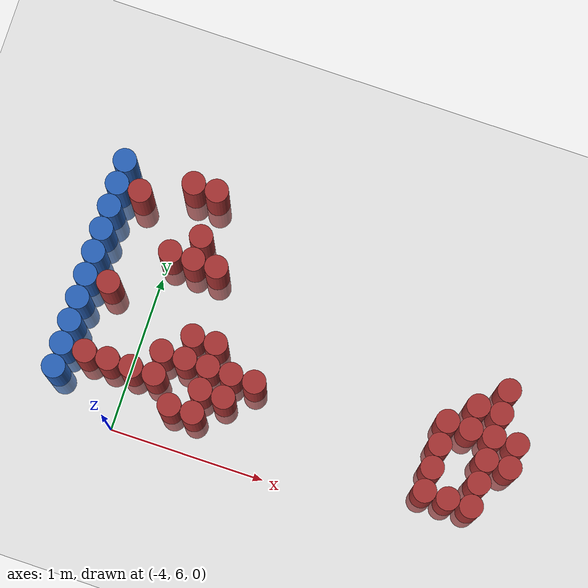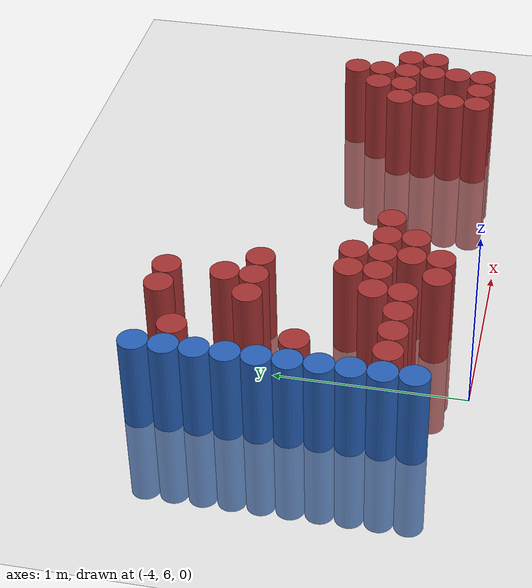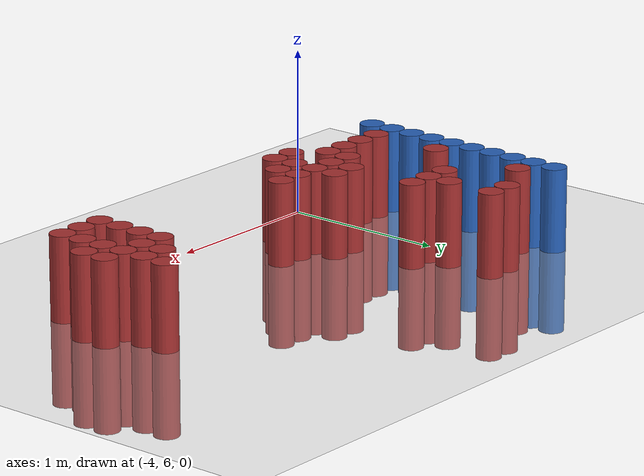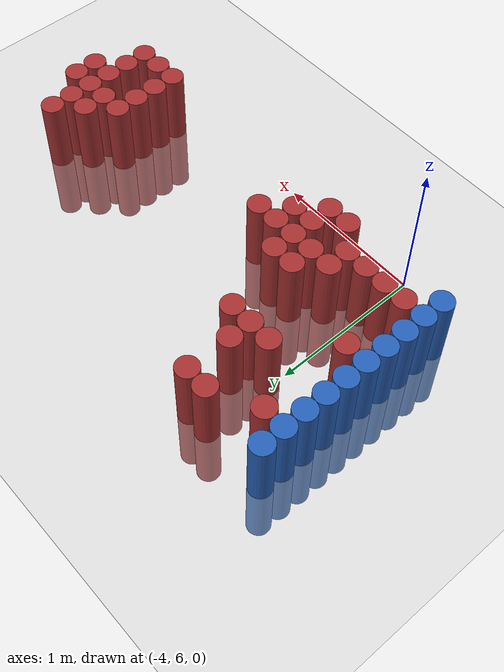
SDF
<sdf version="1.6">
 <world name="default">
  <model name="ground_plane">
   <static>1</static>
   <link name="link">
    <collision name="collision">
     <geometry><plane><normal>0 0 1</normal><size>100 100</size></plane></geometry>
     <surface><friction><ode><mu>100</mu><mu2>50</mu2></ode></friction></surface>
    </collision>
    <visual name="visual">
     <cast_shadows>0</cast_shadows>
     <geometry><plane><normal>0 0 1</normal><size>100 100</size></plane></geometry>
     <material>
      <script><uri>file://media/materials/scripts/gazebo.material</uri><name>Gazebo/Grey</name></script>
     </material>
    </visual>
   </link>
  </model>
  <model name="unit_cylinder_103">
   <static>1</static>
   <pose>-4.425000 6.225000 0.000000 0.000000 0.000000 0.000000</pose>
   <link name="link">
    <inertial>
     <mass>1</mass>
     <inertia><ixx>0.145833</ixx><ixy>0</ixy><ixz>0</ixz><iyy>0.145833</iyy><iyz>0</iyz><izz>0.125</izz></inertia>
    </inertial>
    <collision name="collision">
     <geometry><cylinder><radius>0.075000</radius><length>1</length></cylinder></geometry>
    </collision>
    <visual name="visual">
     <geometry><cylinder><radius>0.075000</radius><length>1</length></cylinder></geometry>
     <material>
      <ambient>0.152000 0.379000 0.720000 1</ambient>
      <diffuse>0.152000 0.379000 0.720000 1</diffuse>
     </material>
     <material>
      <script><name>Gazebo/Grey</name><uri>file://media/materials/scripts/gazebo.material</uri></script>
     </material>
    </visual>
   </link>
  </model>
  <model name="unit_cylinder_104">
   <static>1</static>
   <pose>-4.425000 6.375000 0.000000 0.000000 0.000000 0.000000</pose>
   <link name="link">
    <inertial>
     <mass>1</mass>
     <inertia><ixx>0.145833</ixx><ixy>0</ixy><ixz>0</ixz><iyy>0.145833</iyy><iyz>0</iyz><izz>0.125</izz></inertia>
    </inertial>
    <collision name="collision">
     <geometry><cylinder><radius>0.075000</radius><length>1</length></cylinder></geometry>
    </collision>
    <visual name="visual">
     <geometry><cylinder><radius>0.075000</radius><length>1</length></cylinder></geometry>
     <material>
      <ambient>0.152000 0.379000 0.720000 1</ambient>
      <diffuse>0.152000 0.379000 0.720000 1</diffuse>
     </material>
     <material>
      <script><name>Gazebo/Grey</name><uri>file://media/materials/scripts/gazebo.material</uri></script>
     </material>
    </visual>
   </link>
  </model>
  <model name="unit_cylinder_105">
   <static>1</static>
   <pose>-4.425000 6.525000 0.000000 0.000000 0.000000 0.000000</pose>
   <link name="link">
    <inertial>
     <mass>1</mass>
     <inertia><ixx>0.145833</ixx><ixy>0</ixy><ixz>0</ixz><iyy>0.145833</iyy><iyz>0</iyz><izz>0.125</izz></inertia>
    </inertial>
    <collision name="collision">
     <geometry><cylinder><radius>0.075000</radius><length>1</length></cylinder></geometry>
    </collision>
    <visual name="visual">
     <geometry><cylinder><radius>0.075000</radius><length>1</length></cylinder></geometry>
     <material>
      <ambient>0.152000 0.379000 0.720000 1</ambient>
      <diffuse>0.152000 0.379000 0.720000 1</diffuse>
     </material>
     <material>
      <script><name>Gazebo/Grey</name><uri>file://media/materials/scripts/gazebo.material</uri></script>
     </material>
    </visual>
   </link>
  </model>
  <model name="unit_cylinder_106">
   <static>1</static>
   <pose>-4.425000 6.675000 0.000000 0.000000 0.000000 0.000000</pose>
   <link name="link">
    <inertial>
     <mass>1</mass>
     <inertia><ixx>0.145833</ixx><ixy>0</ixy><ixz>0</ixz><iyy>0.145833</iyy><iyz>0</iyz><izz>0.125</izz></inertia>
    </inertial>
    <collision name="collision">
     <geometry><cylinder><radius>0.075000</radius><length>1</length></cylinder></geometry>
    </collision>
    <visual name="visual">
     <geometry><cylinder><radius>0.075000</radius><length>1</length></cylinder></geometry>
     <material>
      <ambient>0.152000 0.379000 0.720000 1</ambient>
      <diffuse>0.152000 0.379000 0.720000 1</diffuse>
     </material>
     <material>
      <script><name>Gazebo/Grey</name><uri>file://media/materials/scripts/gazebo.material</uri></script>
     </material>
    </visual>
   </link>
  </model>
  <model name="unit_cylinder_107">
   <static>1</static>
   <pose>-4.425000 6.825000 0.000000 0.000000 0.000000 0.000000</pose>
   <link name="link">
    <inertial>
     <mass>1</mass>
     <inertia><ixx>0.145833</ixx><ixy>0</ixy><ixz>0</ixz><iyy>0.145833</iyy><iyz>0</iyz><izz>0.125</izz></inertia>
    </inertial>
    <collision name="collision">
     <geometry><cylinder><radius>0.075000</radius><length>1</length></cylinder></geometry>
    </collision>
    <visual name="visual">
     <geometry><cylinder><radius>0.075000</radius><length>1</length></cylinder></geometry>
     <material>
      <ambient>0.152000 0.379000 0.720000 1</ambient>
      <diffuse>0.152000 0.379000 0.720000 1</diffuse>
     </material>
     <material>
      <script><name>Gazebo/Grey</name><uri>file://media/materials/scripts/gazebo.material</uri></script>
     </material>
    </visual>
   </link>
  </model>
  <model name="unit_cylinder_108">
   <static>1</static>
   <pose>-4.425000 6.975000 0.000000 0.000000 0.000000 0.000000</pose>
   <link name="link">
    <inertial>
     <mass>1</mass>
     <inertia><ixx>0.145833</ixx><ixy>0</ixy><ixz>0</ixz><iyy>0.145833</iyy><iyz>0</iyz><izz>0.125</izz></inertia>
    </inertial>
    <collision name="collision">
     <geometry><cylinder><radius>0.075000</radius><length>1</length></cylinder></geometry>
    </collision>
    <visual name="visual">
     <geometry><cylinder><radius>0.075000</radius><length>1</length></cylinder></geometry>
     <material>
      <ambient>0.152000 0.379000 0.720000 1</ambient>
      <diffuse>0.152000 0.379000 0.720000 1</diffuse>
     </material>
     <material>
      <script><name>Gazebo/Grey</name><uri>file://media/materials/scripts/gazebo.material</uri></script>
     </material>
    </visual>
   </link>
  </model>
  <model name="unit_cylinder_109">
   <static>1</static>
   <pose>-4.425000 7.125000 0.000000 0.000000 0.000000 0.000000</pose>
   <link name="link">
    <inertial>
     <mass>1</mass>
     <inertia><ixx>0.145833</ixx><ixy>0</ixy><ixz>0</ixz><iyy>0.145833</iyy><iyz>0</iyz><izz>0.125</izz></inertia>
    </inertial>
    <collision name="collision">
     <geometry><cylinder><radius>0.075000</radius><length>1</length></cylinder></geometry>
    </collision>
    <visual name="visual">
     <geometry><cylinder><radius>0.075000</radius><length>1</length></cylinder></geometry>
     <material>
      <ambient>0.152000 0.379000 0.720000 1</ambient>
      <diffuse>0.152000 0.379000 0.720000 1</diffuse>
     </material>
     <material>
      <script><name>Gazebo/Grey</name><uri>file://media/materials/scripts/gazebo.material</uri></script>
     </material>
    </visual>
   </link>
  </model>
  <model name="unit_cylinder_110">
   <static>1</static>
   <pose>-4.425000 7.275000 0.000000 0.000000 0.000000 0.000000</pose>
   <link name="link">
    <inertial>
     <mass>1</mass>
     <inertia><ixx>0.145833</ixx><ixy>0</ixy><ixz>0</ixz><iyy>0.145833</iyy><iyz>0</iyz><izz>0.125</izz></inertia>
    </inertial>
    <collision name="collision">
     <geometry><cylinder><radius>0.075000</radius><length>1</length></cylinder></geometry>
    </collision>
    <visual name="visual">
     <geometry><cylinder><radius>0.075000</radius><length>1</length></cylinder></geometry>
     <material>
      <ambient>0.152000 0.379000 0.720000 1</ambient>
      <diffuse>0.152000 0.379000 0.720000 1</diffuse>
     </material>
     <material>
      <script><name>Gazebo/Grey</name><uri>file://media/materials/scripts/gazebo.material</uri></script>
     </material>
    </visual>
   </link>
  </model>
  <model name="unit_cylinder_111">
   <static>1</static>
   <pose>-4.425000 7.425000 0.000000 0.000000 0.000000 0.000000</pose>
   <link name="link">
    <inertial>
     <mass>1</mass>
     <inertia><ixx>0.145833</ixx><ixy>0</ixy><ixz>0</ixz><iyy>0.145833</iyy><iyz>0</iyz><izz>0.125</izz></inertia>
    </inertial>
    <collision name="collision">
     <geometry><cylinder><radius>0.075000</radius><length>1</length></cylinder></geometry>
    </collision>
    <visual name="visual">
     <geometry><cylinder><radius>0.075000</radius><length>1</length></cylinder></geometry>
     <material>
      <ambient>0.152000 0.379000 0.720000 1</ambient>
      <diffuse>0.152000 0.379000 0.720000 1</diffuse>
     </material>
     <material>
      <script><name>Gazebo/Grey</name><uri>file://media/materials/scripts/gazebo.material</uri></script>
     </material>
    </visual>
   </link>
  </model>
  <model name="unit_cylinder_112">
   <static>1</static>
   <pose>-4.425000 7.575000 0.000000 0.000000 0.000000 0.000000</pose>
   <link name="link">
    <inertial>
     <mass>1</mass>
     <inertia><ixx>0.145833</ixx><ixy>0</ixy><ixz>0</ixz><iyy>0.145833</iyy><iyz>0</iyz><izz>0.125</izz></inertia>
    </inertial>
    <collision name="collision">
     <geometry><cylinder><radius>0.075000</radius><length>1</length></cylinder></geometry>
    </collision>
    <visual name="visual">
     <geometry><cylinder><radius>0.075000</radius><length>1</length></cylinder></geometry>
     <material>
      <ambient>0.152000 0.379000 0.720000 1</ambient>
      <diffuse>0.152000 0.379000 0.720000 1</diffuse>
     </material>
     <material>
      <script><name>Gazebo/Grey</name><uri>file://media/materials/scripts/gazebo.material</uri></script>
     </material>
    </visual>
   </link>
  </model>
  <model name="unit_cylinder_128">
   <static>1</static>
   <pose>-4.275000 6.375000 0.000000 0.000000 0.000000 0.000000</pose>
   <link name="link">
    <inertial>
     <mass>1</mass>
     <inertia><ixx>0.145833</ixx><ixy>0</ixy><ixz>0</ixz><iyy>0.145833</iyy><iyz>0</iyz><izz>0.125</izz></inertia>
    </inertial>
    <collision name="collision">
     <geometry><cylinder><radius>0.075000</radius><length>1</length></cylinder></geometry>
    </collision>
    <visual name="visual">
     <geometry><cylinder><radius>0.075000</radius><length>1</length></cylinder></geometry>
     <material>
      <ambient>0.648000 0.192000 0.192000 1</ambient>
      <diffuse>0.648000 0.192000 0.192000 1</diffuse>
     </material>
     <material>
      <script><name>Gazebo/Grey</name><uri>file://media/materials/scripts/gazebo.material</uri></script>
     </material>
    </visual>
   </link>
  </model>
  <model name="unit_cylinder_129">
   <static>1</static>
   <pose>-4.275000 6.825000 0.000000 0.000000 0.000000 0.000000</pose>
   <link name="link">
    <inertial>
     <mass>1</mass>
     <inertia><ixx>0.145833</ixx><ixy>0</ixy><ixz>0</ixz><iyy>0.145833</iyy><iyz>0</iyz><izz>0.125</izz></inertia>
    </inertial>
    <collision name="collision">
     <geometry><cylinder><radius>0.075000</radius><length>1</length></cylinder></geometry>
    </collision>
    <visual name="visual">
     <geometry><cylinder><radius>0.075000</radius><length>1</length></cylinder></geometry>
     <material>
      <ambient>0.648000 0.192000 0.192000 1</ambient>
      <diffuse>0.648000 0.192000 0.192000 1</diffuse>
     </material>
     <material>
      <script><name>Gazebo/Grey</name><uri>file://media/materials/scripts/gazebo.material</uri></script>
     </material>
    </visual>
   </link>
  </model>
  <model name="unit_cylinder_130">
   <static>1</static>
   <pose>-4.275000 7.425000 0.000000 0.000000 0.000000 0.000000</pose>
   <link name="link">
    <inertial>
     <mass>1</mass>
     <inertia><ixx>0.145833</ixx><ixy>0</ixy><ixz>0</ixz><iyy>0.145833</iyy><iyz>0</iyz><izz>0.125</izz></inertia>
    </inertial>
    <collision name="collision">
     <geometry><cylinder><radius>0.075000</radius><length>1</length></cylinder></geometry>
    </collision>
    <visual name="visual">
     <geometry><cylinder><radius>0.075000</radius><length>1</length></cylinder></geometry>
     <material>
      <ambient>0.648000 0.192000 0.192000 1</ambient>
      <diffuse>0.648000 0.192000 0.192000 1</diffuse>
     </material>
     <material>
      <script><name>Gazebo/Grey</name><uri>file://media/materials/scripts/gazebo.material</uri></script>
     </material>
    </visual>
   </link>
  </model>
  <model name="unit_cylinder_138">
   <static>1</static>
   <pose>-4.125000 6.375000 0.000000 0.000000 0.000000 0.000000</pose>
   <link name="link">
    <inertial>
     <mass>1</mass>
     <inertia><ixx>0.145833</ixx><ixy>0</ixy><ixz>0</ixz><iyy>0.145833</iyy><iyz>0</iyz><izz>0.125</izz></inertia>
    </inertial>
    <collision name="collision">
     <geometry><cylinder><radius>0.075000</radius><length>1</length></cylinder></geometry>
    </collision>
    <visual name="visual">
     <geometry><cylinder><radius>0.075000</radius><length>1</length></cylinder></geometry>
     <material>
      <ambient>0.648000 0.192000 0.192000 1</ambient>
      <diffuse>0.648000 0.192000 0.192000 1</diffuse>
     </material>
     <material>
      <script><name>Gazebo/Grey</name><uri>file://media/materials/scripts/gazebo.material</uri></script>
     </material>
    </visual>
   </link>
  </model>
  <model name="unit_cylinder_145">
   <static>1</static>
   <pose>-3.975000 6.375000 0.000000 0.000000 0.000000 0.000000</pose>
   <link name="link">
    <inertial>
     <mass>1</mass>
     <inertia><ixx>0.145833</ixx><ixy>0</ixy><ixz>0</ixz><iyy>0.145833</iyy><iyz>0</iyz><izz>0.125</izz></inertia>
    </inertial>
    <collision name="collision">
     <geometry><cylinder><radius>0.075000</radius><length>1</length></cylinder></geometry>
    </collision>
    <visual name="visual">
     <geometry><cylinder><radius>0.075000</radius><length>1</length></cylinder></geometry>
     <material>
      <ambient>0.648000 0.192000 0.192000 1</ambient>
      <diffuse>0.648000 0.192000 0.192000 1</diffuse>
     </material>
     <material>
      <script><name>Gazebo/Grey</name><uri>file://media/materials/scripts/gazebo.material</uri></script>
     </material>
    </visual>
   </link>
  </model>
  <model name="unit_cylinder_146">
   <static>1</static>
   <pose>-3.975000 7.125000 0.000000 0.000000 0.000000 0.000000</pose>
   <link name="link">
    <inertial>
     <mass>1</mass>
     <inertia><ixx>0.145833</ixx><ixy>0</ixy><ixz>0</ixz><iyy>0.145833</iyy><iyz>0</iyz><izz>0.125</izz></inertia>
    </inertial>
    <collision name="collision">
     <geometry><cylinder><radius>0.075000</radius><length>1</length></cylinder></geometry>
    </collision>
    <visual name="visual">
     <geometry><cylinder><radius>0.075000</radius><length>1</length></cylinder></geometry>
     <material>
      <ambient>0.648000 0.192000 0.192000 1</ambient>
      <diffuse>0.648000 0.192000 0.192000 1</diffuse>
     </material>
     <material>
      <script><name>Gazebo/Grey</name><uri>file://media/materials/scripts/gazebo.material</uri></script>
     </material>
    </visual>
   </link>
  </model>
  <model name="unit_cylinder_147">
   <static>1</static>
   <pose>-3.975000 7.575000 0.000000 0.000000 0.000000 0.000000</pose>
   <link name="link">
    <inertial>
     <mass>1</mass>
     <inertia><ixx>0.145833</ixx><ixy>0</ixy><ixz>0</ixz><iyy>0.145833</iyy><iyz>0</iyz><izz>0.125</izz></inertia>
    </inertial>
    <collision name="collision">
     <geometry><cylinder><radius>0.075000</radius><length>1</length></cylinder></geometry>
    </collision>
    <visual name="visual">
     <geometry><cylinder><radius>0.075000</radius><length>1</length></cylinder></geometry>
     <material>
      <ambient>0.648000 0.192000 0.192000 1</ambient>
      <diffuse>0.648000 0.192000 0.192000 1</diffuse>
     </material>
     <material>
      <script><name>Gazebo/Grey</name><uri>file://media/materials/scripts/gazebo.material</uri></script>
     </material>
    </visual>
   </link>
  </model>
  <model name="unit_cylinder_154">
   <static>1</static>
   <pose>-3.825000 6.375000 0.000000 0.000000 0.000000 0.000000</pose>
   <link name="link">
    <inertial>
     <mass>1</mass>
     <inertia><ixx>0.145833</ixx><ixy>0</ixy><ixz>0</ixz><iyy>0.145833</iyy><iyz>0</iyz><izz>0.125</izz></inertia>
    </inertial>
    <collision name="collision">
     <geometry><cylinder><radius>0.075000</radius><length>1</length></cylinder></geometry>
    </collision>
    <visual name="visual">
     <geometry><cylinder><radius>0.075000</radius><length>1</length></cylinder></geometry>
     <material>
      <ambient>0.648000 0.192000 0.192000 1</ambient>
      <diffuse>0.648000 0.192000 0.192000 1</diffuse>
     </material>
     <material>
      <script><name>Gazebo/Grey</name><uri>file://media/materials/scripts/gazebo.material</uri></script>
     </material>
    </visual>
   </link>
  </model>
  <model name="unit_cylinder_155">
   <static>1</static>
   <pose>-3.825000 6.525000 0.000000 0.000000 0.000000 0.000000</pose>
   <link name="link">
    <inertial>
     <mass>1</mass>
     <inertia><ixx>0.145833</ixx><ixy>0</ixy><ixz>0</ixz><iyy>0.145833</iyy><iyz>0</iyz><izz>0.125</izz></inertia>
    </inertial>
    <collision name="collision">
     <geometry><cylinder><radius>0.075000</radius><length>1</length></cylinder></geometry>
    </collision>
    <visual name="visual">
     <geometry><cylinder><radius>0.075000</radius><length>1</length></cylinder></geometry>
     <material>
      <ambient>0.648000 0.192000 0.192000 1</ambient>
      <diffuse>0.648000 0.192000 0.192000 1</diffuse>
     </material>
     <material>
      <script><name>Gazebo/Grey</name><uri>file://media/materials/scripts/gazebo.material</uri></script>
     </material>
    </visual>
   </link>
  </model>
  <model name="unit_cylinder_156">
   <static>1</static>
   <pose>-3.825000 7.125000 0.000000 0.000000 0.000000 0.000000</pose>
   <link name="link">
    <inertial>
     <mass>1</mass>
     <inertia><ixx>0.145833</ixx><ixy>0</ixy><ixz>0</ixz><iyy>0.145833</iyy><iyz>0</iyz><izz>0.125</izz></inertia>
    </inertial>
    <collision name="collision">
     <geometry><cylinder><radius>0.075000</radius><length>1</length></cylinder></geometry>
    </collision>
    <visual name="visual">
     <geometry><cylinder><radius>0.075000</radius><length>1</length></cylinder></geometry>
     <material>
      <ambient>0.648000 0.192000 0.192000 1</ambient>
      <diffuse>0.648000 0.192000 0.192000 1</diffuse>
     </material>
     <material>
      <script><name>Gazebo/Grey</name><uri>file://media/materials/scripts/gazebo.material</uri></script>
     </material>
    </visual>
   </link>
  </model>
  <model name="unit_cylinder_157">
   <static>1</static>
   <pose>-3.825000 7.275000 0.000000 0.000000 0.000000 0.000000</pose>
   <link name="link">
    <inertial>
     <mass>1</mass>
     <inertia><ixx>0.145833</ixx><ixy>0</ixy><ixz>0</ixz><iyy>0.145833</iyy><iyz>0</iyz><izz>0.125</izz></inertia>
    </inertial>
    <collision name="collision">
     <geometry><cylinder><radius>0.075000</radius><length>1</length></cylinder></geometry>
    </collision>
    <visual name="visual">
     <geometry><cylinder><radius>0.075000</radius><length>1</length></cylinder></geometry>
     <material>
      <ambient>0.648000 0.192000 0.192000 1</ambient>
      <diffuse>0.648000 0.192000 0.192000 1</diffuse>
     </material>
     <material>
      <script><name>Gazebo/Grey</name><uri>file://media/materials/scripts/gazebo.material</uri></script>
     </material>
    </visual>
   </link>
  </model>
  <model name="unit_cylinder_158">
   <static>1</static>
   <pose>-3.825000 7.575000 0.000000 0.000000 0.000000 0.000000</pose>
   <link name="link">
    <inertial>
     <mass>1</mass>
     <inertia><ixx>0.145833</ixx><ixy>0</ixy><ixz>0</ixz><iyy>0.145833</iyy><iyz>0</iyz><izz>0.125</izz></inertia>
    </inertial>
    <collision name="collision">
     <geometry><cylinder><radius>0.075000</radius><length>1</length></cylinder></geometry>
    </collision>
    <visual name="visual">
     <geometry><cylinder><radius>0.075000</radius><length>1</length></cylinder></geometry>
     <material>
      <ambient>0.648000 0.192000 0.192000 1</ambient>
      <diffuse>0.648000 0.192000 0.192000 1</diffuse>
     </material>
     <material>
      <script><name>Gazebo/Grey</name><uri>file://media/materials/scripts/gazebo.material</uri></script>
     </material>
    </visual>
   </link>
  </model>
  <model name="unit_cylinder_165">
   <static>1</static>
   <pose>-3.675000 6.225000 0.000000 0.000000 0.000000 0.000000</pose>
   <link name="link">
    <inertial>
     <mass>1</mass>
     <inertia><ixx>0.145833</ixx><ixy>0</ixy><ixz>0</ixz><iyy>0.145833</iyy><iyz>0</iyz><izz>0.125</izz></inertia>
    </inertial>
    <collision name="collision">
     <geometry><cylinder><radius>0.075000</radius><length>1</length></cylinder></geometry>
    </collision>
    <visual name="visual">
     <geometry><cylinder><radius>0.075000</radius><length>1</length></cylinder></geometry>
     <material>
      <ambient>0.648000 0.192000 0.192000 1</ambient>
      <diffuse>0.648000 0.192000 0.192000 1</diffuse>
     </material>
     <material>
      <script><name>Gazebo/Grey</name><uri>file://media/materials/scripts/gazebo.material</uri></script>
     </material>
    </visual>
   </link>
  </model>
  <model name="unit_cylinder_166">
   <static>1</static>
   <pose>-3.675000 6.525000 0.000000 0.000000 0.000000 0.000000</pose>
   <link name="link">
    <inertial>
     <mass>1</mass>
     <inertia><ixx>0.145833</ixx><ixy>0</ixy><ixz>0</ixz><iyy>0.145833</iyy><iyz>0</iyz><izz>0.125</izz></inertia>
    </inertial>
    <collision name="collision">
     <geometry><cylinder><radius>0.075000</radius><length>1</length></cylinder></geometry>
    </collision>
    <visual name="visual">
     <geometry><cylinder><radius>0.075000</radius><length>1</length></cylinder></geometry>
     <material>
      <ambient>0.648000 0.192000 0.192000 1</ambient>
      <diffuse>0.648000 0.192000 0.192000 1</diffuse>
     </material>
     <material>
      <script><name>Gazebo/Grey</name><uri>file://media/materials/scripts/gazebo.material</uri></script>
     </material>
    </visual>
   </link>
  </model>
  <model name="unit_cylinder_167">
   <static>1</static>
   <pose>-3.675000 6.675000 0.000000 0.000000 0.000000 0.000000</pose>
   <link name="link">
    <inertial>
     <mass>1</mass>
     <inertia><ixx>0.145833</ixx><ixy>0</ixy><ixz>0</ixz><iyy>0.145833</iyy><iyz>0</iyz><izz>0.125</izz></inertia>
    </inertial>
    <collision name="collision">
     <geometry><cylinder><radius>0.075000</radius><length>1</length></cylinder></geometry>
    </collision>
    <visual name="visual">
     <geometry><cylinder><radius>0.075000</radius><length>1</length></cylinder></geometry>
     <material>
      <ambient>0.648000 0.192000 0.192000 1</ambient>
      <diffuse>0.648000 0.192000 0.192000 1</diffuse>
     </material>
     <material>
      <script><name>Gazebo/Grey</name><uri>file://media/materials/scripts/gazebo.material</uri></script>
     </material>
    </visual>
   </link>
  </model>
  <model name="unit_cylinder_168">
   <static>1</static>
   <pose>-3.675000 7.125000 0.000000 0.000000 0.000000 0.000000</pose>
   <link name="link">
    <inertial>
     <mass>1</mass>
     <inertia><ixx>0.145833</ixx><ixy>0</ixy><ixz>0</ixz><iyy>0.145833</iyy><iyz>0</iyz><izz>0.125</izz></inertia>
    </inertial>
    <collision name="collision">
     <geometry><cylinder><radius>0.075000</radius><length>1</length></cylinder></geometry>
    </collision>
    <visual name="visual">
     <geometry><cylinder><radius>0.075000</radius><length>1</length></cylinder></geometry>
     <material>
      <ambient>0.648000 0.192000 0.192000 1</ambient>
      <diffuse>0.648000 0.192000 0.192000 1</diffuse>
     </material>
     <material>
      <script><name>Gazebo/Grey</name><uri>file://media/materials/scripts/gazebo.material</uri></script>
     </material>
    </visual>
   </link>
  </model>
  <model name="unit_cylinder_171">
   <static>1</static>
   <pose>-3.525000 6.225000 0.000000 0.000000 0.000000 0.000000</pose>
   <link name="link">
    <inertial>
     <mass>1</mass>
     <inertia><ixx>0.145833</ixx><ixy>0</ixy><ixz>0</ixz><iyy>0.145833</iyy><iyz>0</iyz><izz>0.125</izz></inertia>
    </inertial>
    <collision name="collision">
     <geometry><cylinder><radius>0.075000</radius><length>1</length></cylinder></geometry>
    </collision>
    <visual name="visual">
     <geometry><cylinder><radius>0.075000</radius><length>1</length></cylinder></geometry>
     <material>
      <ambient>0.648000 0.192000 0.192000 1</ambient>
      <diffuse>0.648000 0.192000 0.192000 1</diffuse>
     </material>
     <material>
      <script><name>Gazebo/Grey</name><uri>file://media/materials/scripts/gazebo.material</uri></script>
     </material>
    </visual>
   </link>
  </model>
  <model name="unit_cylinder_172">
   <static>1</static>
   <pose>-3.525000 6.375000 0.000000 0.000000 0.000000 0.000000</pose>
   <link name="link">
    <inertial>
     <mass>1</mass>
     <inertia><ixx>0.145833</ixx><ixy>0</ixy><ixz>0</ixz><iyy>0.145833</iyy><iyz>0</iyz><izz>0.125</izz></inertia>
    </inertial>
    <collision name="collision">
     <geometry><cylinder><radius>0.075000</radius><length>1</length></cylinder></geometry>
    </collision>
    <visual name="visual">
     <geometry><cylinder><radius>0.075000</radius><length>1</length></cylinder></geometry>
     <material>
      <ambient>0.648000 0.192000 0.192000 1</ambient>
      <diffuse>0.648000 0.192000 0.192000 1</diffuse>
     </material>
     <material>
      <script><name>Gazebo/Grey</name><uri>file://media/materials/scripts/gazebo.material</uri></script>
     </material>
    </visual>
   </link>
  </model>
  <model name="unit_cylinder_173">
   <static>1</static>
   <pose>-3.525000 6.525000 0.000000 0.000000 0.000000 0.000000</pose>
   <link name="link">
    <inertial>
     <mass>1</mass>
     <inertia><ixx>0.145833</ixx><ixy>0</ixy><ixz>0</ixz><iyy>0.145833</iyy><iyz>0</iyz><izz>0.125</izz></inertia>
    </inertial>
    <collision name="collision">
     <geometry><cylinder><radius>0.075000</radius><length>1</length></cylinder></geometry>
    </collision>
    <visual name="visual">
     <geometry><cylinder><radius>0.075000</radius><length>1</length></cylinder></geometry>
     <material>
      <ambient>0.648000 0.192000 0.192000 1</ambient>
      <diffuse>0.648000 0.192000 0.192000 1</diffuse>
     </material>
     <material>
      <script><name>Gazebo/Grey</name><uri>file://media/materials/scripts/gazebo.material</uri></script>
     </material>
    </visual>
   </link>
  </model>
  <model name="unit_cylinder_174">
   <static>1</static>
   <pose>-3.525000 6.675000 0.000000 0.000000 0.000000 0.000000</pose>
   <link name="link">
    <inertial>
     <mass>1</mass>
     <inertia><ixx>0.145833</ixx><ixy>0</ixy><ixz>0</ixz><iyy>0.145833</iyy><iyz>0</iyz><izz>0.125</izz></inertia>
    </inertial>
    <collision name="collision">
     <geometry><cylinder><radius>0.075000</radius><length>1</length></cylinder></geometry>
    </collision>
    <visual name="visual">
     <geometry><cylinder><radius>0.075000</radius><length>1</length></cylinder></geometry>
     <material>
      <ambient>0.648000 0.192000 0.192000 1</ambient>
      <diffuse>0.648000 0.192000 0.192000 1</diffuse>
     </material>
     <material>
      <script><name>Gazebo/Grey</name><uri>file://media/materials/scripts/gazebo.material</uri></script>
     </material>
    </visual>
   </link>
  </model>
  <model name="unit_cylinder_175">
   <static>1</static>
   <pose>-3.375000 6.375000 0.000000 0.000000 0.000000 0.000000</pose>
   <link name="link">
    <inertial>
     <mass>1</mass>
     <inertia><ixx>0.145833</ixx><ixy>0</ixy><ixz>0</ixz><iyy>0.145833</iyy><iyz>0</iyz><izz>0.125</izz></inertia>
    </inertial>
    <collision name="collision">
     <geometry><cylinder><radius>0.075000</radius><length>1</length></cylinder></geometry>
    </collision>
    <visual name="visual">
     <geometry><cylinder><radius>0.075000</radius><length>1</length></cylinder></geometry>
     <material>
      <ambient>0.648000 0.192000 0.192000 1</ambient>
      <diffuse>0.648000 0.192000 0.192000 1</diffuse>
     </material>
     <material>
      <script><name>Gazebo/Grey</name><uri>file://media/materials/scripts/gazebo.material</uri></script>
     </material>
    </visual>
   </link>
  </model>
  <model name="unit_cylinder_176">
   <static>1</static>
   <pose>-3.375000 6.525000 0.000000 0.000000 0.000000 0.000000</pose>
   <link name="link">
    <inertial>
     <mass>1</mass>
     <inertia><ixx>0.145833</ixx><ixy>0</ixy><ixz>0</ixz><iyy>0.145833</iyy><iyz>0</iyz><izz>0.125</izz></inertia>
    </inertial>
    <collision name="collision">
     <geometry><cylinder><radius>0.075000</radius><length>1</length></cylinder></geometry>
    </collision>
    <visual name="visual">
     <geometry><cylinder><radius>0.075000</radius><length>1</length></cylinder></geometry>
     <material>
      <ambient>0.648000 0.192000 0.192000 1</ambient>
      <diffuse>0.648000 0.192000 0.192000 1</diffuse>
     </material>
     <material>
      <script><name>Gazebo/Grey</name><uri>file://media/materials/scripts/gazebo.material</uri></script>
     </material>
    </visual>
   </link>
  </model>
  <model name="unit_cylinder_178">
   <static>1</static>
   <pose>-3.225000 6.525000 0.000000 0.000000 0.000000 0.000000</pose>
   <link name="link">
    <inertial>
     <mass>1</mass>
     <inertia><ixx>0.145833</ixx><ixy>0</ixy><ixz>0</ixz><iyy>0.145833</iyy><iyz>0</iyz><izz>0.125</izz></inertia>
    </inertial>
    <collision name="collision">
     <geometry><cylinder><radius>0.075000</radius><length>1</length></cylinder></geometry>
    </collision>
    <visual name="visual">
     <geometry><cylinder><radius>0.075000</radius><length>1</length></cylinder></geometry>
     <material>
      <ambient>0.648000 0.192000 0.192000 1</ambient>
      <diffuse>0.648000 0.192000 0.192000 1</diffuse>
     </material>
     <material>
      <script><name>Gazebo/Grey</name><uri>file://media/materials/scripts/gazebo.material</uri></script>
     </material>
    </visual>
   </link>
  </model>
  <model name="unit_cylinder_192">
   <static>1</static>
   <pose>-2.025000 6.225000 0.000000 0.000000 0.000000 0.000000</pose>
   <link name="link">
    <inertial>
     <mass>1</mass>
     <inertia><ixx>0.145833</ixx><ixy>0</ixy><ixz>0</ixz><iyy>0.145833</iyy><iyz>0</iyz><izz>0.125</izz></inertia>
    </inertial>
    <collision name="collision">
     <geometry><cylinder><radius>0.075000</radius><length>1</length></cylinder></geometry>
    </collision>
    <visual name="visual">
     <geometry><cylinder><radius>0.075000</radius><length>1</length></cylinder></geometry>
     <material>
      <ambient>0.648000 0.192000 0.192000 1</ambient>
      <diffuse>0.648000 0.192000 0.192000 1</diffuse>
     </material>
     <material>
      <script><name>Gazebo/Grey</name><uri>file://media/materials/scripts/gazebo.material</uri></script>
     </material>
    </visual>
   </link>
  </model>
  <model name="unit_cylinder_193">
   <static>1</static>
   <pose>-2.025000 6.375000 0.000000 0.000000 0.000000 0.000000</pose>
   <link name="link">
    <inertial>
     <mass>1</mass>
     <inertia><ixx>0.145833</ixx><ixy>0</ixy><ixz>0</ixz><iyy>0.145833</iyy><iyz>0</iyz><izz>0.125</izz></inertia>
    </inertial>
    <collision name="collision">
     <geometry><cylinder><radius>0.075000</radius><length>1</length></cylinder></geometry>
    </collision>
    <visual name="visual">
     <geometry><cylinder><radius>0.075000</radius><length>1</length></cylinder></geometry>
     <material>
      <ambient>0.648000 0.192000 0.192000 1</ambient>
      <diffuse>0.648000 0.192000 0.192000 1</diffuse>
     </material>
     <material>
      <script><name>Gazebo/Grey</name><uri>file://media/materials/scripts/gazebo.material</uri></script>
     </material>
    </visual>
   </link>
  </model>
  <model name="unit_cylinder_194">
   <static>1</static>
   <pose>-2.025000 6.525000 0.000000 0.000000 0.000000 0.000000</pose>
   <link name="link">
    <inertial>
     <mass>1</mass>
     <inertia><ixx>0.145833</ixx><ixy>0</ixy><ixz>0</ixz><iyy>0.145833</iyy><iyz>0</iyz><izz>0.125</izz></inertia>
    </inertial>
    <collision name="collision">
     <geometry><cylinder><radius>0.075000</radius><length>1</length></cylinder></geometry>
    </collision>
    <visual name="visual">
     <geometry><cylinder><radius>0.075000</radius><length>1</length></cylinder></geometry>
     <material>
      <ambient>0.648000 0.192000 0.192000 1</ambient>
      <diffuse>0.648000 0.192000 0.192000 1</diffuse>
     </material>
     <material>
      <script><name>Gazebo/Grey</name><uri>file://media/materials/scripts/gazebo.material</uri></script>
     </material>
    </visual>
   </link>
  </model>
  <model name="unit_cylinder_195">
   <static>1</static>
   <pose>-2.025000 6.675000 0.000000 0.000000 0.000000 0.000000</pose>
   <link name="link">
    <inertial>
     <mass>1</mass>
     <inertia><ixx>0.145833</ixx><ixy>0</ixy><ixz>0</ixz><iyy>0.145833</iyy><iyz>0</iyz><izz>0.125</izz></inertia>
    </inertial>
    <collision name="collision">
     <geometry><cylinder><radius>0.075000</radius><length>1</length></cylinder></geometry>
    </collision>
    <visual name="visual">
     <geometry><cylinder><radius>0.075000</radius><length>1</length></cylinder></geometry>
     <material>
      <ambient>0.648000 0.192000 0.192000 1</ambient>
      <diffuse>0.648000 0.192000 0.192000 1</diffuse>
     </material>
     <material>
      <script><name>Gazebo/Grey</name><uri>file://media/materials/scripts/gazebo.material</uri></script>
     </material>
    </visual>
   </link>
  </model>
  <model name="unit_cylinder_196">
   <static>1</static>
   <pose>-1.875000 6.225000 0.000000 0.000000 0.000000 0.000000</pose>
   <link name="link">
    <inertial>
     <mass>1</mass>
     <inertia><ixx>0.145833</ixx><ixy>0</ixy><ixz>0</ixz><iyy>0.145833</iyy><iyz>0</iyz><izz>0.125</izz></inertia>
    </inertial>
    <collision name="collision">
     <geometry><cylinder><radius>0.075000</radius><length>1</length></cylinder></geometry>
    </collision>
    <visual name="visual">
     <geometry><cylinder><radius>0.075000</radius><length>1</length></cylinder></geometry>
     <material>
      <ambient>0.648000 0.192000 0.192000 1</ambient>
      <diffuse>0.648000 0.192000 0.192000 1</diffuse>
     </material>
     <material>
      <script><name>Gazebo/Grey</name><uri>file://media/materials/scripts/gazebo.material</uri></script>
     </material>
    </visual>
   </link>
  </model>
  <model name="unit_cylinder_197">
   <static>1</static>
   <pose>-1.875000 6.675000 0.000000 0.000000 0.000000 0.000000</pose>
   <link name="link">
    <inertial>
     <mass>1</mass>
     <inertia><ixx>0.145833</ixx><ixy>0</ixy><ixz>0</ixz><iyy>0.145833</iyy><iyz>0</iyz><izz>0.125</izz></inertia>
    </inertial>
    <collision name="collision">
     <geometry><cylinder><radius>0.075000</radius><length>1</length></cylinder></geometry>
    </collision>
    <visual name="visual">
     <geometry><cylinder><radius>0.075000</radius><length>1</length></cylinder></geometry>
     <material>
      <ambient>0.648000 0.192000 0.192000 1</ambient>
      <diffuse>0.648000 0.192000 0.192000 1</diffuse>
     </material>
     <material>
      <script><name>Gazebo/Grey</name><uri>file://media/materials/scripts/gazebo.material</uri></script>
     </material>
    </visual>
   </link>
  </model>
  <model name="unit_cylinder_198">
   <static>1</static>
   <pose>-1.875000 6.825000 0.000000 0.000000 0.000000 0.000000</pose>
   <link name="link">
    <inertial>
     <mass>1</mass>
     <inertia><ixx>0.145833</ixx><ixy>0</ixy><ixz>0</ixz><iyy>0.145833</iyy><iyz>0</iyz><izz>0.125</izz></inertia>
    </inertial>
    <collision name="collision">
     <geometry><cylinder><radius>0.075000</radius><length>1</length></cylinder></geometry>
    </collision>
    <visual name="visual">
     <geometry><cylinder><radius>0.075000</radius><length>1</length></cylinder></geometry>
     <material>
      <ambient>0.648000 0.192000 0.192000 1</ambient>
      <diffuse>0.648000 0.192000 0.192000 1</diffuse>
     </material>
     <material>
      <script><name>Gazebo/Grey</name><uri>file://media/materials/scripts/gazebo.material</uri></script>
     </material>
    </visual>
   </link>
  </model>
  <model name="unit_cylinder_201">
   <static>1</static>
   <pose>-1.725000 6.225000 0.000000 0.000000 0.000000 0.000000</pose>
   <link name="link">
    <inertial>
     <mass>1</mass>
     <inertia><ixx>0.145833</ixx><ixy>0</ixy><ixz>0</ixz><iyy>0.145833</iyy><iyz>0</iyz><izz>0.125</izz></inertia>
    </inertial>
    <collision name="collision">
     <geometry><cylinder><radius>0.075000</radius><length>1</length></cylinder></geometry>
    </collision>
    <visual name="visual">
     <geometry><cylinder><radius>0.075000</radius><length>1</length></cylinder></geometry>
     <material>
      <ambient>0.648000 0.192000 0.192000 1</ambient>
      <diffuse>0.648000 0.192000 0.192000 1</diffuse>
     </material>
     <material>
      <script><name>Gazebo/Grey</name><uri>file://media/materials/scripts/gazebo.material</uri></script>
     </material>
    </visual>
   </link>
  </model>
  <model name="unit_cylinder_202">
   <static>1</static>
   <pose>-1.725000 6.375000 0.000000 0.000000 0.000000 0.000000</pose>
   <link name="link">
    <inertial>
     <mass>1</mass>
     <inertia><ixx>0.145833</ixx><ixy>0</ixy><ixz>0</ixz><iyy>0.145833</iyy><iyz>0</iyz><izz>0.125</izz></inertia>
    </inertial>
    <collision name="collision">
     <geometry><cylinder><radius>0.075000</radius><length>1</length></cylinder></geometry>
    </collision>
    <visual name="visual">
     <geometry><cylinder><radius>0.075000</radius><length>1</length></cylinder></geometry>
     <material>
      <ambient>0.648000 0.192000 0.192000 1</ambient>
      <diffuse>0.648000 0.192000 0.192000 1</diffuse>
     </material>
     <material>
      <script><name>Gazebo/Grey</name><uri>file://media/materials/scripts/gazebo.material</uri></script>
     </material>
    </visual>
   </link>
  </model>
  <model name="unit_cylinder_203">
   <static>1</static>
   <pose>-1.725000 6.525000 0.000000 0.000000 0.000000 0.000000</pose>
   <link name="link">
    <inertial>
     <mass>1</mass>
     <inertia><ixx>0.145833</ixx><ixy>0</ixy><ixz>0</ixz><iyy>0.145833</iyy><iyz>0</iyz><izz>0.125</izz></inertia>
    </inertial>
    <collision name="collision">
     <geometry><cylinder><radius>0.075000</radius><length>1</length></cylinder></geometry>
    </collision>
    <visual name="visual">
     <geometry><cylinder><radius>0.075000</radius><length>1</length></cylinder></geometry>
     <material>
      <ambient>0.648000 0.192000 0.192000 1</ambient>
      <diffuse>0.648000 0.192000 0.192000 1</diffuse>
     </material>
     <material>
      <script><name>Gazebo/Grey</name><uri>file://media/materials/scripts/gazebo.material</uri></script>
     </material>
    </visual>
   </link>
  </model>
  <model name="unit_cylinder_204">
   <static>1</static>
   <pose>-1.725000 6.675000 0.000000 0.000000 0.000000 0.000000</pose>
   <link name="link">
    <inertial>
     <mass>1</mass>
     <inertia><ixx>0.145833</ixx><ixy>0</ixy><ixz>0</ixz><iyy>0.145833</iyy><iyz>0</iyz><izz>0.125</izz></inertia>
    </inertial>
    <collision name="collision">
     <geometry><cylinder><radius>0.075000</radius><length>1</length></cylinder></geometry>
    </collision>
    <visual name="visual">
     <geometry><cylinder><radius>0.075000</radius><length>1</length></cylinder></geometry>
     <material>
      <ambient>0.648000 0.192000 0.192000 1</ambient>
      <diffuse>0.648000 0.192000 0.192000 1</diffuse>
     </material>
     <material>
      <script><name>Gazebo/Grey</name><uri>file://media/materials/scripts/gazebo.material</uri></script>
     </material>
    </visual>
   </link>
  </model>
  <model name="unit_cylinder_205">
   <static>1</static>
   <pose>-1.725000 6.825000 0.000000 0.000000 0.000000 0.000000</pose>
   <link name="link">
    <inertial>
     <mass>1</mass>
     <inertia><ixx>0.145833</ixx><ixy>0</ixy><ixz>0</ixz><iyy>0.145833</iyy><iyz>0</iyz><izz>0.125</izz></inertia>
    </inertial>
    <collision name="collision">
     <geometry><cylinder><radius>0.075000</radius><length>1</length></cylinder></geometry>
    </collision>
    <visual name="visual">
     <geometry><cylinder><radius>0.075000</radius><length>1</length></cylinder></geometry>
     <material>
      <ambient>0.648000 0.192000 0.192000 1</ambient>
      <diffuse>0.648000 0.192000 0.192000 1</diffuse>
     </material>
     <material>
      <script><name>Gazebo/Grey</name><uri>file://media/materials/scripts/gazebo.material</uri></script>
     </material>
    </visual>
   </link>
  </model>
  <model name="unit_cylinder_206">
   <static>1</static>
   <pose>-1.725000 6.975000 0.000000 0.000000 0.000000 0.000000</pose>
   <link name="link">
    <inertial>
     <mass>1</mass>
     <inertia><ixx>0.145833</ixx><ixy>0</ixy><ixz>0</ixz><iyy>0.145833</iyy><iyz>0</iyz><izz>0.125</izz></inertia>
    </inertial>
    <collision name="collision">
     <geometry><cylinder><radius>0.075000</radius><length>1</length></cylinder></geometry>
    </collision>
    <visual name="visual">
     <geometry><cylinder><radius>0.075000</radius><length>1</length></cylinder></geometry>
     <material>
      <ambient>0.648000 0.192000 0.192000 1</ambient>
      <diffuse>0.648000 0.192000 0.192000 1</diffuse>
     </material>
     <material>
      <script><name>Gazebo/Grey</name><uri>file://media/materials/scripts/gazebo.material</uri></script>
     </material>
    </visual>
   </link>
  </model>
  <model name="unit_cylinder_213">
   <static>1</static>
   <pose>-1.575000 6.525000 0.000000 0.000000 0.000000 0.000000</pose>
   <link name="link">
    <inertial>
     <mass>1</mass>
     <inertia><ixx>0.145833</ixx><ixy>0</ixy><ixz>0</ixz><iyy>0.145833</iyy><iyz>0</iyz><izz>0.125</izz></inertia>
    </inertial>
    <collision name="collision">
     <geometry><cylinder><radius>0.075000</radius><length>1</length></cylinder></geometry>
    </collision>
    <visual name="visual">
     <geometry><cylinder><radius>0.075000</radius><length>1</length></cylinder></geometry>
     <material>
      <ambient>0.648000 0.192000 0.192000 1</ambient>
      <diffuse>0.648000 0.192000 0.192000 1</diffuse>
     </material>
     <material>
      <script><name>Gazebo/Grey</name><uri>file://media/materials/scripts/gazebo.material</uri></script>
     </material>
    </visual>
   </link>
  </model>
  <model name="unit_cylinder_214">
   <static>1</static>
   <pose>-1.575000 6.675000 0.000000 0.000000 0.000000 0.000000</pose>
   <link name="link">
    <inertial>
     <mass>1</mass>
     <inertia><ixx>0.145833</ixx><ixy>0</ixy><ixz>0</ixz><iyy>0.145833</iyy><iyz>0</iyz><izz>0.125</izz></inertia>
    </inertial>
    <collision name="collision">
     <geometry><cylinder><radius>0.075000</radius><length>1</length></cylinder></geometry>
    </collision>
    <visual name="visual">
     <geometry><cylinder><radius>0.075000</radius><length>1</length></cylinder></geometry>
     <material>
      <ambient>0.648000 0.192000 0.192000 1</ambient>
      <diffuse>0.648000 0.192000 0.192000 1</diffuse>
     </material>
     <material>
      <script><name>Gazebo/Grey</name><uri>file://media/materials/scripts/gazebo.material</uri></script>
     </material>
    </visual>
   </link>
  </model>
 </world>
</sdf>
